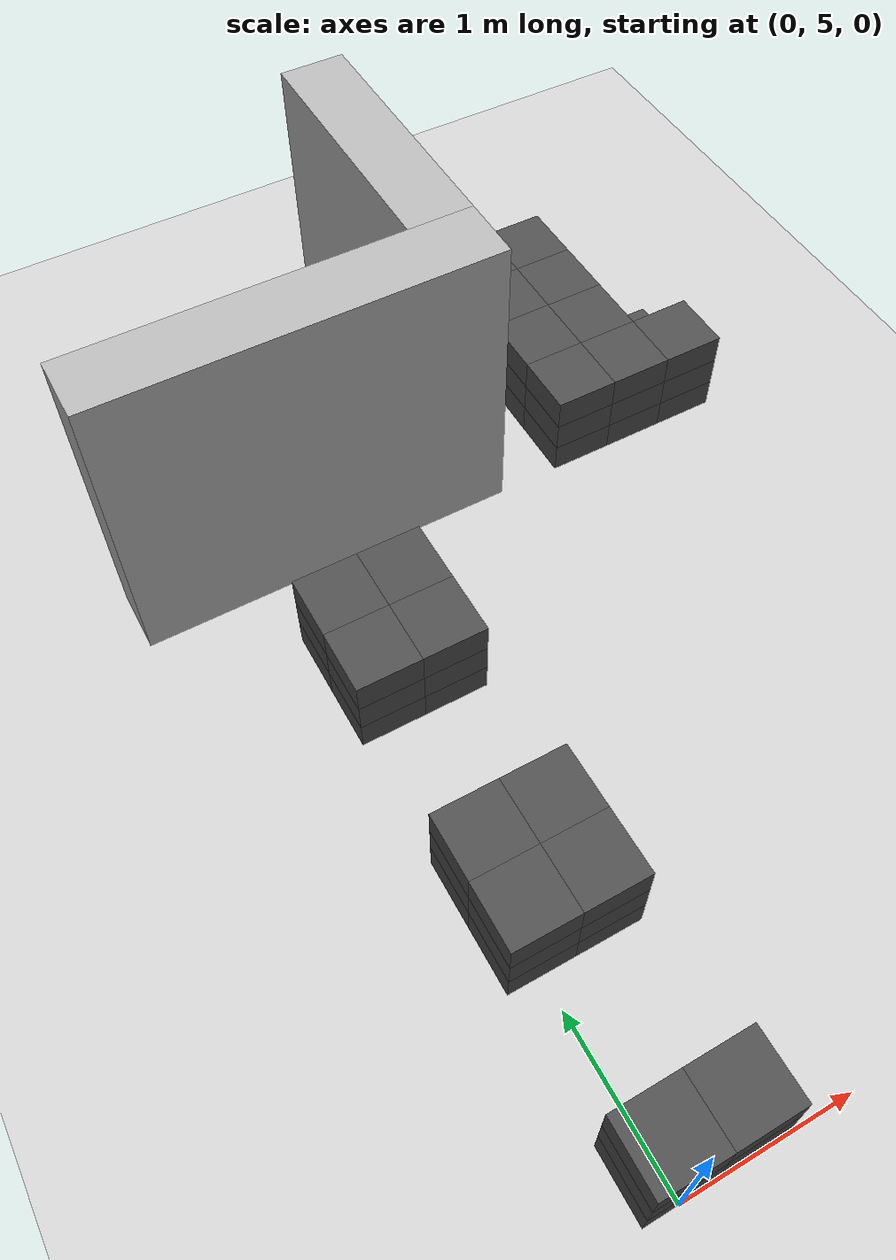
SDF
<sdf version="1.6">
 <world name="default">
  <include><uri>model://ground_plane</uri></include>
  <model name="wall_2">
   <pose frame="sim_world">1.2 10.2 1.0 0 0 0</pose>
   <static>True</static>
   <link name="wall_2_link">
    <inertial>
     <mass>100</mass>
     <inertia>
      <ixx>0.166667</ixx>
      <ixy>0</ixy>
      <ixz>0</ixz>
      <iyy>0.166667</iyy>
      <iyz>0</iyz>
      <izz>0.166667</izz>
     </inertia>
    </inertial>
    <collision name="wall_2_collision">
     <geometry><box><size>0.4 1.6 2.0</size></box></geometry>
     <max_contacts>100</max_contacts>
    </collision>
    <visual name="wall_2_visual">
     <geometry><box><size>0.4 1.6 2.0</size></box></geometry>
     <material><ambient>0.7 0.7 0.7 1</ambient><diffuse>0.7 0.7 0.7 1</diffuse></material>
    </visual>
   </link>
  </model>
  <model name="wall_23">
   <pose frame="sim_world">0.2 9.2 1.0 0 0 0</pose>
   <static>True</static>
   <link name="wall_23_link">
    <inertial>
     <mass>100</mass>
     <inertia>
      <ixx>0.166667</ixx>
      <ixy>0</ixy>
      <ixz>0</ixz>
      <iyy>0.166667</iyy>
      <iyz>0</iyz>
      <izz>0.166667</izz>
     </inertia>
    </inertial>
    <collision name="wall_23_collision">
     <geometry><box><size>2.4000000000000004 0.4 2.0</size></box></geometry>
     <max_contacts>100</max_contacts>
    </collision>
    <visual name="wall_23_visual">
     <geometry><box><size>2.4000000000000004 0.4 2.0</size></box></geometry>
     <material><ambient>0.7 0.7 0.7 1</ambient><diffuse>0.7 0.7 0.7 1</diffuse></material>
    </visual>
   </link>
  </model>
  <model name="box_24">
   <pose frame="sim_world">0.0 5.2 0.1 0 -0 0</pose>
   <static>True</static>
   <link name="box_24_link">
    <inertial>
     <mass>100</mass>
     <inertia>
      <ixx>0.166667</ixx>
      <ixy>0</ixy>
      <ixz>0</ixz>
      <iyy>0.166667</iyy>
      <iyz>0</iyz>
      <izz>0.166667</izz>
     </inertia>
    </inertial>
    <collision name="box_24_collision">
     <geometry><box><size>0.4 0.4 0.2</size></box></geometry>
     <max_contacts>100</max_contacts>
    </collision>
    <visual name="box_24_visual">
     <geometry><box><size>0.4 0.4 0.2</size></box></geometry>
     <material><ambient>0.3 0.3 0.3 1</ambient><diffuse>0.3 0.3 0.3 1</diffuse></material>
    </visual>
   </link>
  </model>
  <model name="box_25">
   <pose frame="sim_world">0.0 5.2 0.3 0 -0 0</pose>
   <static>True</static>
   <link name="box_25_link">
    <inertial>
     <mass>100</mass>
     <inertia>
      <ixx>0.166667</ixx>
      <ixy>0</ixy>
      <ixz>0</ixz>
      <iyy>0.166667</iyy>
      <iyz>0</iyz>
      <izz>0.166667</izz>
     </inertia>
    </inertial>
    <collision name="box_25_collision">
     <geometry><box><size>0.4 0.4 0.2</size></box></geometry>
     <max_contacts>100</max_contacts>
    </collision>
    <visual name="box_25_visual">
     <geometry><box><size>0.4 0.4 0.2</size></box></geometry>
     <material><ambient>0.3 0.3 0.3 1</ambient><diffuse>0.3 0.3 0.3 1</diffuse></material>
    </visual>
   </link>
  </model>
  <model name="box_26">
   <pose frame="sim_world">0.0 5.2 0.5 0 -0 0</pose>
   <static>True</static>
   <link name="box_26_link">
    <inertial>
     <mass>100</mass>
     <inertia>
      <ixx>0.166667</ixx>
      <ixy>0</ixy>
      <ixz>0</ixz>
      <iyy>0.166667</iyy>
      <iyz>0</iyz>
      <izz>0.166667</izz>
     </inertia>
    </inertial>
    <collision name="box_26_collision">
     <geometry><box><size>0.4 0.4 0.2</size></box></geometry>
     <max_contacts>100</max_contacts>
    </collision>
    <visual name="box_26_visual">
     <geometry><box><size>0.4 0.4 0.2</size></box></geometry>
     <material><ambient>0.3 0.3 0.3 1</ambient><diffuse>0.3 0.3 0.3 1</diffuse></material>
    </visual>
   </link>
  </model>
  <model name="box_27">
   <pose frame="sim_world">0.0 6.4 0.1 0 -0 0</pose>
   <static>True</static>
   <link name="box_27_link">
    <inertial>
     <mass>100</mass>
     <inertia>
      <ixx>0.166667</ixx>
      <ixy>0</ixy>
      <ixz>0</ixz>
      <iyy>0.166667</iyy>
      <iyz>0</iyz>
      <izz>0.166667</izz>
     </inertia>
    </inertial>
    <collision name="box_27_collision">
     <geometry><box><size>0.4 0.4 0.2</size></box></geometry>
     <max_contacts>100</max_contacts>
    </collision>
    <visual name="box_27_visual">
     <geometry><box><size>0.4 0.4 0.2</size></box></geometry>
     <material><ambient>0.3 0.3 0.3 1</ambient><diffuse>0.3 0.3 0.3 1</diffuse></material>
    </visual>
   </link>
  </model>
  <model name="box_28">
   <pose frame="sim_world">0.0 6.4 0.3 0 -0 0</pose>
   <static>True</static>
   <link name="box_28_link">
    <inertial>
     <mass>100</mass>
     <inertia>
      <ixx>0.166667</ixx>
      <ixy>0</ixy>
      <ixz>0</ixz>
      <iyy>0.166667</iyy>
      <iyz>0</iyz>
      <izz>0.166667</izz>
     </inertia>
    </inertial>
    <collision name="box_28_collision">
     <geometry><box><size>0.4 0.4 0.2</size></box></geometry>
     <max_contacts>100</max_contacts>
    </collision>
    <visual name="box_28_visual">
     <geometry><box><size>0.4 0.4 0.2</size></box></geometry>
     <material><ambient>0.3 0.3 0.3 1</ambient><diffuse>0.3 0.3 0.3 1</diffuse></material>
    </visual>
   </link>
  </model>
  <model name="box_29">
   <pose frame="sim_world">0.0 6.4 0.5 0 -0 0</pose>
   <static>True</static>
   <link name="box_29_link">
    <inertial>
     <mass>100</mass>
     <inertia>
      <ixx>0.166667</ixx>
      <ixy>0</ixy>
      <ixz>0</ixz>
      <iyy>0.166667</iyy>
      <iyz>0</iyz>
      <izz>0.166667</izz>
     </inertia>
    </inertial>
    <collision name="box_29_collision">
     <geometry><box><size>0.4 0.4 0.2</size></box></geometry>
     <max_contacts>100</max_contacts>
    </collision>
    <visual name="box_29_visual">
     <geometry><box><size>0.4 0.4 0.2</size></box></geometry>
     <material><ambient>0.3 0.3 0.3 1</ambient><diffuse>0.3 0.3 0.3 1</diffuse></material>
    </visual>
   </link>
  </model>
  <model name="box_30">
   <pose frame="sim_world">0.0 6.8 0.1 0 -0 0</pose>
   <static>True</static>
   <link name="box_30_link">
    <inertial>
     <mass>100</mass>
     <inertia>
      <ixx>0.166667</ixx>
      <ixy>0</ixy>
      <ixz>0</ixz>
      <iyy>0.166667</iyy>
      <iyz>0</iyz>
      <izz>0.166667</izz>
     </inertia>
    </inertial>
    <collision name="box_30_collision">
     <geometry><box><size>0.4 0.4 0.2</size></box></geometry>
     <max_contacts>100</max_contacts>
    </collision>
    <visual name="box_30_visual">
     <geometry><box><size>0.4 0.4 0.2</size></box></geometry>
     <material><ambient>0.3 0.3 0.3 1</ambient><diffuse>0.3 0.3 0.3 1</diffuse></material>
    </visual>
   </link>
  </model>
  <model name="box_31">
   <pose frame="sim_world">0.0 6.8 0.3 0 -0 0</pose>
   <static>True</static>
   <link name="box_31_link">
    <inertial>
     <mass>100</mass>
     <inertia>
      <ixx>0.166667</ixx>
      <ixy>0</ixy>
      <ixz>0</ixz>
      <iyy>0.166667</iyy>
      <iyz>0</iyz>
      <izz>0.166667</izz>
     </inertia>
    </inertial>
    <collision name="box_31_collision">
     <geometry><box><size>0.4 0.4 0.2</size></box></geometry>
     <max_contacts>100</max_contacts>
    </collision>
    <visual name="box_31_visual">
     <geometry><box><size>0.4 0.4 0.2</size></box></geometry>
     <material><ambient>0.3 0.3 0.3 1</ambient><diffuse>0.3 0.3 0.3 1</diffuse></material>
    </visual>
   </link>
  </model>
  <model name="box_32">
   <pose frame="sim_world">0.0 6.8 0.5 0 -0 0</pose>
   <static>True</static>
   <link name="box_32_link">
    <inertial>
     <mass>100</mass>
     <inertia>
      <ixx>0.166667</ixx>
      <ixy>0</ixy>
      <ixz>0</ixz>
      <iyy>0.166667</iyy>
      <iyz>0</iyz>
      <izz>0.166667</izz>
     </inertia>
    </inertial>
    <collision name="box_32_collision">
     <geometry><box><size>0.4 0.4 0.2</size></box></geometry>
     <max_contacts>100</max_contacts>
    </collision>
    <visual name="box_32_visual">
     <geometry><box><size>0.4 0.4 0.2</size></box></geometry>
     <material><ambient>0.3 0.3 0.3 1</ambient><diffuse>0.3 0.3 0.3 1</diffuse></material>
    </visual>
   </link>
  </model>
  <model name="box_33">
   <pose frame="sim_world">0.0 8.0 0.1 0 -0 0</pose>
   <static>True</static>
   <link name="box_33_link">
    <inertial>
     <mass>100</mass>
     <inertia>
      <ixx>0.166667</ixx>
      <ixy>0</ixy>
      <ixz>0</ixz>
      <iyy>0.166667</iyy>
      <iyz>0</iyz>
      <izz>0.166667</izz>
     </inertia>
    </inertial>
    <collision name="box_33_collision">
     <geometry><box><size>0.4 0.4 0.2</size></box></geometry>
     <max_contacts>100</max_contacts>
    </collision>
    <visual name="box_33_visual">
     <geometry><box><size>0.4 0.4 0.2</size></box></geometry>
     <material><ambient>0.3 0.3 0.3 1</ambient><diffuse>0.3 0.3 0.3 1</diffuse></material>
    </visual>
   </link>
  </model>
  <model name="box_34">
   <pose frame="sim_world">0.0 8.0 0.3 0 -0 0</pose>
   <static>True</static>
   <link name="box_34_link">
    <inertial>
     <mass>100</mass>
     <inertia>
      <ixx>0.166667</ixx>
      <ixy>0</ixy>
      <ixz>0</ixz>
      <iyy>0.166667</iyy>
      <iyz>0</iyz>
      <izz>0.166667</izz>
     </inertia>
    </inertial>
    <collision name="box_34_collision">
     <geometry><box><size>0.4 0.4 0.2</size></box></geometry>
     <max_contacts>100</max_contacts>
    </collision>
    <visual name="box_34_visual">
     <geometry><box><size>0.4 0.4 0.2</size></box></geometry>
     <material><ambient>0.3 0.3 0.3 1</ambient><diffuse>0.3 0.3 0.3 1</diffuse></material>
    </visual>
   </link>
  </model>
  <model name="box_35">
   <pose frame="sim_world">0.0 8.0 0.5 0 -0 0</pose>
   <static>True</static>
   <link name="box_35_link">
    <inertial>
     <mass>100</mass>
     <inertia>
      <ixx>0.166667</ixx>
      <ixy>0</ixy>
      <ixz>0</ixz>
      <iyy>0.166667</iyy>
      <iyz>0</iyz>
      <izz>0.166667</izz>
     </inertia>
    </inertial>
    <collision name="box_35_collision">
     <geometry><box><size>0.4 0.4 0.2</size></box></geometry>
     <max_contacts>100</max_contacts>
    </collision>
    <visual name="box_35_visual">
     <geometry><box><size>0.4 0.4 0.2</size></box></geometry>
     <material><ambient>0.3 0.3 0.3 1</ambient><diffuse>0.3 0.3 0.3 1</diffuse></material>
    </visual>
   </link>
  </model>
  <model name="box_36">
   <pose frame="sim_world">0.0 8.4 0.1 0 -0 0</pose>
   <static>True</static>
   <link name="box_36_link">
    <inertial>
     <mass>100</mass>
     <inertia>
      <ixx>0.166667</ixx>
      <ixy>0</ixy>
      <ixz>0</ixz>
      <iyy>0.166667</iyy>
      <iyz>0</iyz>
      <izz>0.166667</izz>
     </inertia>
    </inertial>
    <collision name="box_36_collision">
     <geometry><box><size>0.4 0.4 0.2</size></box></geometry>
     <max_contacts>100</max_contacts>
    </collision>
    <visual name="box_36_visual">
     <geometry><box><size>0.4 0.4 0.2</size></box></geometry>
     <material><ambient>0.3 0.3 0.3 1</ambient><diffuse>0.3 0.3 0.3 1</diffuse></material>
    </visual>
   </link>
  </model>
  <model name="box_37">
   <pose frame="sim_world">0.0 8.4 0.3 0 -0 0</pose>
   <static>True</static>
   <link name="box_37_link">
    <inertial>
     <mass>100</mass>
     <inertia>
      <ixx>0.166667</ixx>
      <ixy>0</ixy>
      <ixz>0</ixz>
      <iyy>0.166667</iyy>
      <iyz>0</iyz>
      <izz>0.166667</izz>
     </inertia>
    </inertial>
    <collision name="box_37_collision">
     <geometry><box><size>0.4 0.4 0.2</size></box></geometry>
     <max_contacts>100</max_contacts>
    </collision>
    <visual name="box_37_visual">
     <geometry><box><size>0.4 0.4 0.2</size></box></geometry>
     <material><ambient>0.3 0.3 0.3 1</ambient><diffuse>0.3 0.3 0.3 1</diffuse></material>
    </visual>
   </link>
  </model>
  <model name="box_38">
   <pose frame="sim_world">0.0 8.4 0.5 0 -0 0</pose>
   <static>True</static>
   <link name="box_38_link">
    <inertial>
     <mass>100</mass>
     <inertia>
      <ixx>0.166667</ixx>
      <ixy>0</ixy>
      <ixz>0</ixz>
      <iyy>0.166667</iyy>
      <iyz>0</iyz>
      <izz>0.166667</izz>
     </inertia>
    </inertial>
    <collision name="box_38_collision">
     <geometry><box><size>0.4 0.4 0.2</size></box></geometry>
     <max_contacts>100</max_contacts>
    </collision>
    <visual name="box_38_visual">
     <geometry><box><size>0.4 0.4 0.2</size></box></geometry>
     <material><ambient>0.3 0.3 0.3 1</ambient><diffuse>0.3 0.3 0.3 1</diffuse></material>
    </visual>
   </link>
  </model>
  <model name="box_57">
   <pose frame="sim_world">0.4 5.2 0.1 0 -0 0</pose>
   <static>True</static>
   <link name="box_57_link">
    <inertial>
     <mass>100</mass>
     <inertia>
      <ixx>0.166667</ixx>
      <ixy>0</ixy>
      <ixz>0</ixz>
      <iyy>0.166667</iyy>
      <iyz>0</iyz>
      <izz>0.166667</izz>
     </inertia>
    </inertial>
    <collision name="box_57_collision">
     <geometry><box><size>0.4 0.4 0.2</size></box></geometry>
     <max_contacts>100</max_contacts>
    </collision>
    <visual name="box_57_visual">
     <geometry><box><size>0.4 0.4 0.2</size></box></geometry>
     <material><ambient>0.3 0.3 0.3 1</ambient><diffuse>0.3 0.3 0.3 1</diffuse></material>
    </visual>
   </link>
  </model>
  <model name="box_58">
   <pose frame="sim_world">0.4 5.2 0.3 0 -0 0</pose>
   <static>True</static>
   <link name="box_58_link">
    <inertial>
     <mass>100</mass>
     <inertia>
      <ixx>0.166667</ixx>
      <ixy>0</ixy>
      <ixz>0</ixz>
      <iyy>0.166667</iyy>
      <iyz>0</iyz>
      <izz>0.166667</izz>
     </inertia>
    </inertial>
    <collision name="box_58_collision">
     <geometry><box><size>0.4 0.4 0.2</size></box></geometry>
     <max_contacts>100</max_contacts>
    </collision>
    <visual name="box_58_visual">
     <geometry><box><size>0.4 0.4 0.2</size></box></geometry>
     <material><ambient>0.3 0.3 0.3 1</ambient><diffuse>0.3 0.3 0.3 1</diffuse></material>
    </visual>
   </link>
  </model>
  <model name="box_59">
   <pose frame="sim_world">0.4 5.2 0.5 0 -0 0</pose>
   <static>True</static>
   <link name="box_59_link">
    <inertial>
     <mass>100</mass>
     <inertia>
      <ixx>0.166667</ixx>
      <ixy>0</ixy>
      <ixz>0</ixz>
      <iyy>0.166667</iyy>
      <iyz>0</iyz>
      <izz>0.166667</izz>
     </inertia>
    </inertial>
    <collision name="box_59_collision">
     <geometry><box><size>0.4 0.4 0.2</size></box></geometry>
     <max_contacts>100</max_contacts>
    </collision>
    <visual name="box_59_visual">
     <geometry><box><size>0.4 0.4 0.2</size></box></geometry>
     <material><ambient>0.3 0.3 0.3 1</ambient><diffuse>0.3 0.3 0.3 1</diffuse></material>
    </visual>
   </link>
  </model>
  <model name="box_60">
   <pose frame="sim_world">0.4 6.4 0.1 0 -0 0</pose>
   <static>True</static>
   <link name="box_60_link">
    <inertial>
     <mass>100</mass>
     <inertia>
      <ixx>0.166667</ixx>
      <ixy>0</ixy>
      <ixz>0</ixz>
      <iyy>0.166667</iyy>
      <iyz>0</iyz>
      <izz>0.166667</izz>
     </inertia>
    </inertial>
    <collision name="box_60_collision">
     <geometry><box><size>0.4 0.4 0.2</size></box></geometry>
     <max_contacts>100</max_contacts>
    </collision>
    <visual name="box_60_visual">
     <geometry><box><size>0.4 0.4 0.2</size></box></geometry>
     <material><ambient>0.3 0.3 0.3 1</ambient><diffuse>0.3 0.3 0.3 1</diffuse></material>
    </visual>
   </link>
  </model>
  <model name="box_61">
   <pose frame="sim_world">0.4 6.4 0.3 0 -0 0</pose>
   <static>True</static>
   <link name="box_61_link">
    <inertial>
     <mass>100</mass>
     <inertia>
      <ixx>0.166667</ixx>
      <ixy>0</ixy>
      <ixz>0</ixz>
      <iyy>0.166667</iyy>
      <iyz>0</iyz>
      <izz>0.166667</izz>
     </inertia>
    </inertial>
    <collision name="box_61_collision">
     <geometry><box><size>0.4 0.4 0.2</size></box></geometry>
     <max_contacts>100</max_contacts>
    </collision>
    <visual name="box_61_visual">
     <geometry><box><size>0.4 0.4 0.2</size></box></geometry>
     <material><ambient>0.3 0.3 0.3 1</ambient><diffuse>0.3 0.3 0.3 1</diffuse></material>
    </visual>
   </link>
  </model>
  <model name="box_62">
   <pose frame="sim_world">0.4 6.4 0.5 0 -0 0</pose>
   <static>True</static>
   <link name="box_62_link">
    <inertial>
     <mass>100</mass>
     <inertia>
      <ixx>0.166667</ixx>
      <ixy>0</ixy>
      <ixz>0</ixz>
      <iyy>0.166667</iyy>
      <iyz>0</iyz>
      <izz>0.166667</izz>
     </inertia>
    </inertial>
    <collision name="box_62_collision">
     <geometry><box><size>0.4 0.4 0.2</size></box></geometry>
     <max_contacts>100</max_contacts>
    </collision>
    <visual name="box_62_visual">
     <geometry><box><size>0.4 0.4 0.2</size></box></geometry>
     <material><ambient>0.3 0.3 0.3 1</ambient><diffuse>0.3 0.3 0.3 1</diffuse></material>
    </visual>
   </link>
  </model>
  <model name="box_63">
   <pose frame="sim_world">0.4 6.8 0.1 0 -0 0</pose>
   <static>True</static>
   <link name="box_63_link">
    <inertial>
     <mass>100</mass>
     <inertia>
      <ixx>0.166667</ixx>
      <ixy>0</ixy>
      <ixz>0</ixz>
      <iyy>0.166667</iyy>
      <iyz>0</iyz>
      <izz>0.166667</izz>
     </inertia>
    </inertial>
    <collision name="box_63_collision">
     <geometry><box><size>0.4 0.4 0.2</size></box></geometry>
     <max_contacts>100</max_contacts>
    </collision>
    <visual name="box_63_visual">
     <geometry><box><size>0.4 0.4 0.2</size></box></geometry>
     <material><ambient>0.3 0.3 0.3 1</ambient><diffuse>0.3 0.3 0.3 1</diffuse></material>
    </visual>
   </link>
  </model>
  <model name="box_64">
   <pose frame="sim_world">0.4 6.8 0.3 0 -0 0</pose>
   <static>True</static>
   <link name="box_64_link">
    <inertial>
     <mass>100</mass>
     <inertia>
      <ixx>0.166667</ixx>
      <ixy>0</ixy>
      <ixz>0</ixz>
      <iyy>0.166667</iyy>
      <iyz>0</iyz>
      <izz>0.166667</izz>
     </inertia>
    </inertial>
    <collision name="box_64_collision">
     <geometry><box><size>0.4 0.4 0.2</size></box></geometry>
     <max_contacts>100</max_contacts>
    </collision>
    <visual name="box_64_visual">
     <geometry><box><size>0.4 0.4 0.2</size></box></geometry>
     <material><ambient>0.3 0.3 0.3 1</ambient><diffuse>0.3 0.3 0.3 1</diffuse></material>
    </visual>
   </link>
  </model>
  <model name="box_65">
   <pose frame="sim_world">0.4 6.8 0.5 0 -0 0</pose>
   <static>True</static>
   <link name="box_65_link">
    <inertial>
     <mass>100</mass>
     <inertia>
      <ixx>0.166667</ixx>
      <ixy>0</ixy>
      <ixz>0</ixz>
      <iyy>0.166667</iyy>
      <iyz>0</iyz>
      <izz>0.166667</izz>
     </inertia>
    </inertial>
    <collision name="box_65_collision">
     <geometry><box><size>0.4 0.4 0.2</size></box></geometry>
     <max_contacts>100</max_contacts>
    </collision>
    <visual name="box_65_visual">
     <geometry><box><size>0.4 0.4 0.2</size></box></geometry>
     <material><ambient>0.3 0.3 0.3 1</ambient><diffuse>0.3 0.3 0.3 1</diffuse></material>
    </visual>
   </link>
  </model>
  <model name="box_66">
   <pose frame="sim_world">0.4 8.0 0.1 0 -0 0</pose>
   <static>True</static>
   <link name="box_66_link">
    <inertial>
     <mass>100</mass>
     <inertia>
      <ixx>0.166667</ixx>
      <ixy>0</ixy>
      <ixz>0</ixz>
      <iyy>0.166667</iyy>
      <iyz>0</iyz>
      <izz>0.166667</izz>
     </inertia>
    </inertial>
    <collision name="box_66_collision">
     <geometry><box><size>0.4 0.4 0.2</size></box></geometry>
     <max_contacts>100</max_contacts>
    </collision>
    <visual name="box_66_visual">
     <geometry><box><size>0.4 0.4 0.2</size></box></geometry>
     <material><ambient>0.3 0.3 0.3 1</ambient><diffuse>0.3 0.3 0.3 1</diffuse></material>
    </visual>
   </link>
  </model>
  <model name="box_67">
   <pose frame="sim_world">0.4 8.0 0.3 0 -0 0</pose>
   <static>True</static>
   <link name="box_67_link">
    <inertial>
     <mass>100</mass>
     <inertia>
      <ixx>0.166667</ixx>
      <ixy>0</ixy>
      <ixz>0</ixz>
      <iyy>0.166667</iyy>
      <iyz>0</iyz>
      <izz>0.166667</izz>
     </inertia>
    </inertial>
    <collision name="box_67_collision">
     <geometry><box><size>0.4 0.4 0.2</size></box></geometry>
     <max_contacts>100</max_contacts>
    </collision>
    <visual name="box_67_visual">
     <geometry><box><size>0.4 0.4 0.2</size></box></geometry>
     <material><ambient>0.3 0.3 0.3 1</ambient><diffuse>0.3 0.3 0.3 1</diffuse></material>
    </visual>
   </link>
  </model>
  <model name="box_68">
   <pose frame="sim_world">0.4 8.0 0.5 0 -0 0</pose>
   <static>True</static>
   <link name="box_68_link">
    <inertial>
     <mass>100</mass>
     <inertia>
      <ixx>0.166667</ixx>
      <ixy>0</ixy>
      <ixz>0</ixz>
      <iyy>0.166667</iyy>
      <iyz>0</iyz>
      <izz>0.166667</izz>
     </inertia>
    </inertial>
    <collision name="box_68_collision">
     <geometry><box><size>0.4 0.4 0.2</size></box></geometry>
     <max_contacts>100</max_contacts>
    </collision>
    <visual name="box_68_visual">
     <geometry><box><size>0.4 0.4 0.2</size></box></geometry>
     <material><ambient>0.3 0.3 0.3 1</ambient><diffuse>0.3 0.3 0.3 1</diffuse></material>
    </visual>
   </link>
  </model>
  <model name="box_69">
   <pose frame="sim_world">0.4 8.4 0.1 0 -0 0</pose>
   <static>True</static>
   <link name="box_69_link">
    <inertial>
     <mass>100</mass>
     <inertia>
      <ixx>0.166667</ixx>
      <ixy>0</ixy>
      <ixz>0</ixz>
      <iyy>0.166667</iyy>
      <iyz>0</iyz>
      <izz>0.166667</izz>
     </inertia>
    </inertial>
    <collision name="box_69_collision">
     <geometry><box><size>0.4 0.4 0.2</size></box></geometry>
     <max_contacts>100</max_contacts>
    </collision>
    <visual name="box_69_visual">
     <geometry><box><size>0.4 0.4 0.2</size></box></geometry>
     <material><ambient>0.3 0.3 0.3 1</ambient><diffuse>0.3 0.3 0.3 1</diffuse></material>
    </visual>
   </link>
  </model>
  <model name="box_70">
   <pose frame="sim_world">0.4 8.4 0.3 0 -0 0</pose>
   <static>True</static>
   <link name="box_70_link">
    <inertial>
     <mass>100</mass>
     <inertia>
      <ixx>0.166667</ixx>
      <ixy>0</ixy>
      <ixz>0</ixz>
      <iyy>0.166667</iyy>
      <iyz>0</iyz>
      <izz>0.166667</izz>
     </inertia>
    </inertial>
    <collision name="box_70_collision">
     <geometry><box><size>0.4 0.4 0.2</size></box></geometry>
     <max_contacts>100</max_contacts>
    </collision>
    <visual name="box_70_visual">
     <geometry><box><size>0.4 0.4 0.2</size></box></geometry>
     <material><ambient>0.3 0.3 0.3 1</ambient><diffuse>0.3 0.3 0.3 1</diffuse></material>
    </visual>
   </link>
  </model>
  <model name="box_71">
   <pose frame="sim_world">0.4 8.4 0.5 0 -0 0</pose>
   <static>True</static>
   <link name="box_71_link">
    <inertial>
     <mass>100</mass>
     <inertia>
      <ixx>0.166667</ixx>
      <ixy>0</ixy>
      <ixz>0</ixz>
      <iyy>0.166667</iyy>
      <iyz>0</iyz>
      <izz>0.166667</izz>
     </inertia>
    </inertial>
    <collision name="box_71_collision">
     <geometry><box><size>0.4 0.4 0.2</size></box></geometry>
     <max_contacts>100</max_contacts>
    </collision>
    <visual name="box_71_visual">
     <geometry><box><size>0.4 0.4 0.2</size></box></geometry>
     <material><ambient>0.3 0.3 0.3 1</ambient><diffuse>0.3 0.3 0.3 1</diffuse></material>
    </visual>
   </link>
  </model>
  <model name="box_75">
   <pose frame="sim_world">2.0 9.2 0.1 0 -0 0</pose>
   <static>True</static>
   <link name="box_75_link">
    <inertial>
     <mass>100</mass>
     <inertia>
      <ixx>0.166667</ixx>
      <ixy>0</ixy>
      <ixz>0</ixz>
      <iyy>0.166667</iyy>
      <iyz>0</iyz>
      <izz>0.166667</izz>
     </inertia>
    </inertial>
    <collision name="box_75_collision">
     <geometry><box><size>0.4 0.4 0.2</size></box></geometry>
     <max_contacts>100</max_contacts>
    </collision>
    <visual name="box_75_visual">
     <geometry><box><size>0.4 0.4 0.2</size></box></geometry>
     <material><ambient>0.3 0.3 0.3 1</ambient><diffuse>0.3 0.3 0.3 1</diffuse></material>
    </visual>
   </link>
  </model>
  <model name="box_76">
   <pose frame="sim_world">2.0 9.2 0.3 0 -0 0</pose>
   <static>True</static>
   <link name="box_76_link">
    <inertial>
     <mass>100</mass>
     <inertia>
      <ixx>0.166667</ixx>
      <ixy>0</ixy>
      <ixz>0</ixz>
      <iyy>0.166667</iyy>
      <iyz>0</iyz>
      <izz>0.166667</izz>
     </inertia>
    </inertial>
    <collision name="box_76_collision">
     <geometry><box><size>0.4 0.4 0.2</size></box></geometry>
     <max_contacts>100</max_contacts>
    </collision>
    <visual name="box_76_visual">
     <geometry><box><size>0.4 0.4 0.2</size></box></geometry>
     <material><ambient>0.3 0.3 0.3 1</ambient><diffuse>0.3 0.3 0.3 1</diffuse></material>
    </visual>
   </link>
  </model>
  <model name="box_77">
   <pose frame="sim_world">2.0 9.2 0.5 0 -0 0</pose>
   <static>True</static>
   <link name="box_77_link">
    <inertial>
     <mass>100</mass>
     <inertia>
      <ixx>0.166667</ixx>
      <ixy>0</ixy>
      <ixz>0</ixz>
      <iyy>0.166667</iyy>
      <iyz>0</iyz>
      <izz>0.166667</izz>
     </inertia>
    </inertial>
    <collision name="box_77_collision">
     <geometry><box><size>0.4 0.4 0.2</size></box></geometry>
     <max_contacts>100</max_contacts>
    </collision>
    <visual name="box_77_visual">
     <geometry><box><size>0.4 0.4 0.2</size></box></geometry>
     <material><ambient>0.3 0.3 0.3 1</ambient><diffuse>0.3 0.3 0.3 1</diffuse></material>
    </visual>
   </link>
  </model>
  <model name="box_78">
   <pose frame="sim_world">2.0 9.6 0.1 0 -0 0</pose>
   <static>True</static>
   <link name="box_78_link">
    <inertial>
     <mass>100</mass>
     <inertia>
      <ixx>0.166667</ixx>
      <ixy>0</ixy>
      <ixz>0</ixz>
      <iyy>0.166667</iyy>
      <iyz>0</iyz>
      <izz>0.166667</izz>
     </inertia>
    </inertial>
    <collision name="box_78_collision">
     <geometry><box><size>0.4 0.4 0.2</size></box></geometry>
     <max_contacts>100</max_contacts>
    </collision>
    <visual name="box_78_visual">
     <geometry><box><size>0.4 0.4 0.2</size></box></geometry>
     <material><ambient>0.3 0.3 0.3 1</ambient><diffuse>0.3 0.3 0.3 1</diffuse></material>
    </visual>
   </link>
  </model>
  <model name="box_79">
   <pose frame="sim_world">2.0 9.6 0.3 0 -0 0</pose>
   <static>True</static>
   <link name="box_79_link">
    <inertial>
     <mass>100</mass>
     <inertia>
      <ixx>0.166667</ixx>
      <ixy>0</ixy>
      <ixz>0</ixz>
      <iyy>0.166667</iyy>
      <iyz>0</iyz>
      <izz>0.166667</izz>
     </inertia>
    </inertial>
    <collision name="box_79_collision">
     <geometry><box><size>0.4 0.4 0.2</size></box></geometry>
     <max_contacts>100</max_contacts>
    </collision>
    <visual name="box_79_visual">
     <geometry><box><size>0.4 0.4 0.2</size></box></geometry>
     <material><ambient>0.3 0.3 0.3 1</ambient><diffuse>0.3 0.3 0.3 1</diffuse></material>
    </visual>
   </link>
  </model>
  <model name="box_80">
   <pose frame="sim_world">2.0 9.6 0.5 0 -0 0</pose>
   <static>True</static>
   <link name="box_80_link">
    <inertial>
     <mass>100</mass>
     <inertia>
      <ixx>0.166667</ixx>
      <ixy>0</ixy>
      <ixz>0</ixz>
      <iyy>0.166667</iyy>
      <iyz>0</iyz>
      <izz>0.166667</izz>
     </inertia>
    </inertial>
    <collision name="box_80_collision">
     <geometry><box><size>0.4 0.4 0.2</size></box></geometry>
     <max_contacts>100</max_contacts>
    </collision>
    <visual name="box_80_visual">
     <geometry><box><size>0.4 0.4 0.2</size></box></geometry>
     <material><ambient>0.3 0.3 0.3 1</ambient><diffuse>0.3 0.3 0.3 1</diffuse></material>
    </visual>
   </link>
  </model>
  <model name="box_81">
   <pose frame="sim_world">2.0 10.0 0.1 0 -0 0</pose>
   <static>True</static>
   <link name="box_81_link">
    <inertial>
     <mass>100</mass>
     <inertia>
      <ixx>0.166667</ixx>
      <ixy>0</ixy>
      <ixz>0</ixz>
      <iyy>0.166667</iyy>
      <iyz>0</iyz>
      <izz>0.166667</izz>
     </inertia>
    </inertial>
    <collision name="box_81_collision">
     <geometry><box><size>0.4 0.4 0.2</size></box></geometry>
     <max_contacts>100</max_contacts>
    </collision>
    <visual name="box_81_visual">
     <geometry><box><size>0.4 0.4 0.2</size></box></geometry>
     <material><ambient>0.3 0.3 0.3 1</ambient><diffuse>0.3 0.3 0.3 1</diffuse></material>
    </visual>
   </link>
  </model>
  <model name="box_82">
   <pose frame="sim_world">2.0 10.0 0.3 0 -0 0</pose>
   <static>True</static>
   <link name="box_82_link">
    <inertial>
     <mass>100</mass>
     <inertia>
      <ixx>0.166667</ixx>
      <ixy>0</ixy>
      <ixz>0</ixz>
      <iyy>0.166667</iyy>
      <iyz>0</iyz>
      <izz>0.166667</izz>
     </inertia>
    </inertial>
    <collision name="box_82_collision">
     <geometry><box><size>0.4 0.4 0.2</size></box></geometry>
     <max_contacts>100</max_contacts>
    </collision>
    <visual name="box_82_visual">
     <geometry><box><size>0.4 0.4 0.2</size></box></geometry>
     <material><ambient>0.3 0.3 0.3 1</ambient><diffuse>0.3 0.3 0.3 1</diffuse></material>
    </visual>
   </link>
  </model>
  <model name="box_83">
   <pose frame="sim_world">2.0 10.0 0.5 0 -0 0</pose>
   <static>True</static>
   <link name="box_83_link">
    <inertial>
     <mass>100</mass>
     <inertia>
      <ixx>0.166667</ixx>
      <ixy>0</ixy>
      <ixz>0</ixz>
      <iyy>0.166667</iyy>
      <iyz>0</iyz>
      <izz>0.166667</izz>
     </inertia>
    </inertial>
    <collision name="box_83_collision">
     <geometry><box><size>0.4 0.4 0.2</size></box></geometry>
     <max_contacts>100</max_contacts>
    </collision>
    <visual name="box_83_visual">
     <geometry><box><size>0.4 0.4 0.2</size></box></geometry>
     <material><ambient>0.3 0.3 0.3 1</ambient><diffuse>0.3 0.3 0.3 1</diffuse></material>
    </visual>
   </link>
  </model>
  <model name="box_84">
   <pose frame="sim_world">2.0 10.4 0.1 0 -0 0</pose>
   <static>True</static>
   <link name="box_84_link">
    <inertial>
     <mass>100</mass>
     <inertia>
      <ixx>0.166667</ixx>
      <ixy>0</ixy>
      <ixz>0</ixz>
      <iyy>0.166667</iyy>
      <iyz>0</iyz>
      <izz>0.166667</izz>
     </inertia>
    </inertial>
    <collision name="box_84_collision">
     <geometry><box><size>0.4 0.4 0.2</size></box></geometry>
     <max_contacts>100</max_contacts>
    </collision>
    <visual name="box_84_visual">
     <geometry><box><size>0.4 0.4 0.2</size></box></geometry>
     <material><ambient>0.3 0.3 0.3 1</ambient><diffuse>0.3 0.3 0.3 1</diffuse></material>
    </visual>
   </link>
  </model>
  <model name="box_85">
   <pose frame="sim_world">2.0 10.4 0.3 0 -0 0</pose>
   <static>True</static>
   <link name="box_85_link">
    <inertial>
     <mass>100</mass>
     <inertia>
      <ixx>0.166667</ixx>
      <ixy>0</ixy>
      <ixz>0</ixz>
      <iyy>0.166667</iyy>
      <iyz>0</iyz>
      <izz>0.166667</izz>
     </inertia>
    </inertial>
    <collision name="box_85_collision">
     <geometry><box><size>0.4 0.4 0.2</size></box></geometry>
     <max_contacts>100</max_contacts>
    </collision>
    <visual name="box_85_visual">
     <geometry><box><size>0.4 0.4 0.2</size></box></geometry>
     <material><ambient>0.3 0.3 0.3 1</ambient><diffuse>0.3 0.3 0.3 1</diffuse></material>
    </visual>
   </link>
  </model>
  <model name="box_86">
   <pose frame="sim_world">2.0 10.4 0.5 0 -0 0</pose>
   <static>True</static>
   <link name="box_86_link">
    <inertial>
     <mass>100</mass>
     <inertia>
      <ixx>0.166667</ixx>
      <ixy>0</ixy>
      <ixz>0</ixz>
      <iyy>0.166667</iyy>
      <iyz>0</iyz>
      <izz>0.166667</izz>
     </inertia>
    </inertial>
    <collision name="box_86_collision">
     <geometry><box><size>0.4 0.4 0.2</size></box></geometry>
     <max_contacts>100</max_contacts>
    </collision>
    <visual name="box_86_visual">
     <geometry><box><size>0.4 0.4 0.2</size></box></geometry>
     <material><ambient>0.3 0.3 0.3 1</ambient><diffuse>0.3 0.3 0.3 1</diffuse></material>
    </visual>
   </link>
  </model>
  <model name="box_93">
   <pose frame="sim_world">2.4 9.2 0.1 0 -0 0</pose>
   <static>True</static>
   <link name="box_93_link">
    <inertial>
     <mass>100</mass>
     <inertia>
      <ixx>0.166667</ixx>
      <ixy>0</ixy>
      <ixz>0</ixz>
      <iyy>0.166667</iyy>
      <iyz>0</iyz>
      <izz>0.166667</izz>
     </inertia>
    </inertial>
    <collision name="box_93_collision">
     <geometry><box><size>0.4 0.4 0.2</size></box></geometry>
     <max_contacts>100</max_contacts>
    </collision>
    <visual name="box_93_visual">
     <geometry><box><size>0.4 0.4 0.2</size></box></geometry>
     <material><ambient>0.3 0.3 0.3 1</ambient><diffuse>0.3 0.3 0.3 1</diffuse></material>
    </visual>
   </link>
  </model>
  <model name="box_94">
   <pose frame="sim_world">2.4 9.2 0.3 0 -0 0</pose>
   <static>True</static>
   <link name="box_94_link">
    <inertial>
     <mass>100</mass>
     <inertia>
      <ixx>0.166667</ixx>
      <ixy>0</ixy>
      <ixz>0</ixz>
      <iyy>0.166667</iyy>
      <iyz>0</iyz>
      <izz>0.166667</izz>
     </inertia>
    </inertial>
    <collision name="box_94_collision">
     <geometry><box><size>0.4 0.4 0.2</size></box></geometry>
     <max_contacts>100</max_contacts>
    </collision>
    <visual name="box_94_visual">
     <geometry><box><size>0.4 0.4 0.2</size></box></geometry>
     <material><ambient>0.3 0.3 0.3 1</ambient><diffuse>0.3 0.3 0.3 1</diffuse></material>
    </visual>
   </link>
  </model>
  <model name="box_95">
   <pose frame="sim_world">2.4 9.2 0.5 0 -0 0</pose>
   <static>True</static>
   <link name="box_95_link">
    <inertial>
     <mass>100</mass>
     <inertia>
      <ixx>0.166667</ixx>
      <ixy>0</ixy>
      <ixz>0</ixz>
      <iyy>0.166667</iyy>
      <iyz>0</iyz>
      <izz>0.166667</izz>
     </inertia>
    </inertial>
    <collision name="box_95_collision">
     <geometry><box><size>0.4 0.4 0.2</size></box></geometry>
     <max_contacts>100</max_contacts>
    </collision>
    <visual name="box_95_visual">
     <geometry><box><size>0.4 0.4 0.2</size></box></geometry>
     <material><ambient>0.3 0.3 0.3 1</ambient><diffuse>0.3 0.3 0.3 1</diffuse></material>
    </visual>
   </link>
  </model>
  <model name="box_96">
   <pose frame="sim_world">2.4 9.6 0.1 0 -0 0</pose>
   <static>True</static>
   <link name="box_96_link">
    <inertial>
     <mass>100</mass>
     <inertia>
      <ixx>0.166667</ixx>
      <ixy>0</ixy>
      <ixz>0</ixz>
      <iyy>0.166667</iyy>
      <iyz>0</iyz>
      <izz>0.166667</izz>
     </inertia>
    </inertial>
    <collision name="box_96_collision">
     <geometry><box><size>0.4 0.4 0.2</size></box></geometry>
     <max_contacts>100</max_contacts>
    </collision>
    <visual name="box_96_visual">
     <geometry><box><size>0.4 0.4 0.2</size></box></geometry>
     <material><ambient>0.3 0.3 0.3 1</ambient><diffuse>0.3 0.3 0.3 1</diffuse></material>
    </visual>
   </link>
  </model>
  <model name="box_97">
   <pose frame="sim_world">2.4 9.6 0.3 0 -0 0</pose>
   <static>True</static>
   <link name="box_97_link">
    <inertial>
     <mass>100</mass>
     <inertia>
      <ixx>0.166667</ixx>
      <ixy>0</ixy>
      <ixz>0</ixz>
      <iyy>0.166667</iyy>
      <iyz>0</iyz>
      <izz>0.166667</izz>
     </inertia>
    </inertial>
    <collision name="box_97_collision">
     <geometry><box><size>0.4 0.4 0.2</size></box></geometry>
     <max_contacts>100</max_contacts>
    </collision>
    <visual name="box_97_visual">
     <geometry><box><size>0.4 0.4 0.2</size></box></geometry>
     <material><ambient>0.3 0.3 0.3 1</ambient><diffuse>0.3 0.3 0.3 1</diffuse></material>
    </visual>
   </link>
  </model>
  <model name="box_98">
   <pose frame="sim_world">2.4 9.6 0.5 0 -0 0</pose>
   <static>True</static>
   <link name="box_98_link">
    <inertial>
     <mass>100</mass>
     <inertia>
      <ixx>0.166667</ixx>
      <ixy>0</ixy>
      <ixz>0</ixz>
      <iyy>0.166667</iyy>
      <iyz>0</iyz>
      <izz>0.166667</izz>
     </inertia>
    </inertial>
    <collision name="box_98_collision">
     <geometry><box><size>0.4 0.4 0.2</size></box></geometry>
     <max_contacts>100</max_contacts>
    </collision>
    <visual name="box_98_visual">
     <geometry><box><size>0.4 0.4 0.2</size></box></geometry>
     <material><ambient>0.3 0.3 0.3 1</ambient><diffuse>0.3 0.3 0.3 1</diffuse></material>
    </visual>
   </link>
  </model>
  <model name="box_99">
   <pose frame="sim_world">2.4 10.0 0.1 0 -0 0</pose>
   <static>True</static>
   <link name="box_99_link">
    <inertial>
     <mass>100</mass>
     <inertia>
      <ixx>0.166667</ixx>
      <ixy>0</ixy>
      <ixz>0</ixz>
      <iyy>0.166667</iyy>
      <iyz>0</iyz>
      <izz>0.166667</izz>
     </inertia>
    </inertial>
    <collision name="box_99_collision">
     <geometry><box><size>0.4 0.4 0.2</size></box></geometry>
     <max_contacts>100</max_contacts>
    </collision>
    <visual name="box_99_visual">
     <geometry><box><size>0.4 0.4 0.2</size></box></geometry>
     <material><ambient>0.3 0.3 0.3 1</ambient><diffuse>0.3 0.3 0.3 1</diffuse></material>
    </visual>
   </link>
  </model>
  <model name="box_100">
   <pose frame="sim_world">2.4 10.0 0.3 0 -0 0</pose>
   <static>True</static>
   <link name="box_100_link">
    <inertial>
     <mass>100</mass>
     <inertia>
      <ixx>0.166667</ixx>
      <ixy>0</ixy>
      <ixz>0</ixz>
      <iyy>0.166667</iyy>
      <iyz>0</iyz>
      <izz>0.166667</izz>
     </inertia>
    </inertial>
    <collision name="box_100_collision">
     <geometry><box><size>0.4 0.4 0.2</size></box></geometry>
     <max_contacts>100</max_contacts>
    </collision>
    <visual name="box_100_visual">
     <geometry><box><size>0.4 0.4 0.2</size></box></geometry>
     <material><ambient>0.3 0.3 0.3 1</ambient><diffuse>0.3 0.3 0.3 1</diffuse></material>
    </visual>
   </link>
  </model>
  <model name="box_101">
   <pose frame="sim_world">2.4 10.0 0.5 0 -0 0</pose>
   <static>True</static>
   <link name="box_101_link">
    <inertial>
     <mass>100</mass>
     <inertia>
      <ixx>0.166667</ixx>
      <ixy>0</ixy>
      <ixz>0</ixz>
      <iyy>0.166667</iyy>
      <iyz>0</iyz>
      <izz>0.166667</izz>
     </inertia>
    </inertial>
    <collision name="box_101_collision">
     <geometry><box><size>0.4 0.4 0.2</size></box></geometry>
     <max_contacts>100</max_contacts>
    </collision>
    <visual name="box_101_visual">
     <geometry><box><size>0.4 0.4 0.2</size></box></geometry>
     <material><ambient>0.3 0.3 0.3 1</ambient><diffuse>0.3 0.3 0.3 1</diffuse></material>
    </visual>
   </link>
  </model>
  <model name="box_102">
   <pose frame="sim_world">2.4 10.4 0.1 0 -0 0</pose>
   <static>True</static>
   <link name="box_102_link">
    <inertial>
     <mass>100</mass>
     <inertia>
      <ixx>0.166667</ixx>
      <ixy>0</ixy>
      <ixz>0</ixz>
      <iyy>0.166667</iyy>
      <iyz>0</iyz>
      <izz>0.166667</izz>
     </inertia>
    </inertial>
    <collision name="box_102_collision">
     <geometry><box><size>0.4 0.4 0.2</size></box></geometry>
     <max_contacts>100</max_contacts>
    </collision>
    <visual name="box_102_visual">
     <geometry><box><size>0.4 0.4 0.2</size></box></geometry>
     <material><ambient>0.3 0.3 0.3 1</ambient><diffuse>0.3 0.3 0.3 1</diffuse></material>
    </visual>
   </link>
  </model>
  <model name="box_103">
   <pose frame="sim_world">2.4 10.4 0.3 0 -0 0</pose>
   <static>True</static>
   <link name="box_103_link">
    <inertial>
     <mass>100</mass>
     <inertia>
      <ixx>0.166667</ixx>
      <ixy>0</ixy>
      <ixz>0</ixz>
      <iyy>0.166667</iyy>
      <iyz>0</iyz>
      <izz>0.166667</izz>
     </inertia>
    </inertial>
    <collision name="box_103_collision">
     <geometry><box><size>0.4 0.4 0.2</size></box></geometry>
     <max_contacts>100</max_contacts>
    </collision>
    <visual name="box_103_visual">
     <geometry><box><size>0.4 0.4 0.2</size></box></geometry>
     <material><ambient>0.3 0.3 0.3 1</ambient><diffuse>0.3 0.3 0.3 1</diffuse></material>
    </visual>
   </link>
  </model>
  <model name="box_104">
   <pose frame="sim_world">2.4 10.4 0.5 0 -0 0</pose>
   <static>True</static>
   <link name="box_104_link">
    <inertial>
     <mass>100</mass>
     <inertia>
      <ixx>0.166667</ixx>
      <ixy>0</ixy>
      <ixz>0</ixz>
      <iyy>0.166667</iyy>
      <iyz>0</iyz>
      <izz>0.166667</izz>
     </inertia>
    </inertial>
    <collision name="box_104_collision">
     <geometry><box><size>0.4 0.4 0.2</size></box></geometry>
     <max_contacts>100</max_contacts>
    </collision>
    <visual name="box_104_visual">
     <geometry><box><size>0.4 0.4 0.2</size></box></geometry>
     <material><ambient>0.3 0.3 0.3 1</ambient><diffuse>0.3 0.3 0.3 1</diffuse></material>
    </visual>
   </link>
  </model>
  <model name="box_111">
   <pose frame="sim_world">2.8 9.2 0.1 0 -0 0</pose>
   <static>True</static>
   <link name="box_111_link">
    <inertial>
     <mass>100</mass>
     <inertia>
      <ixx>0.166667</ixx>
      <ixy>0</ixy>
      <ixz>0</ixz>
      <iyy>0.166667</iyy>
      <iyz>0</iyz>
      <izz>0.166667</izz>
     </inertia>
    </inertial>
    <collision name="box_111_collision">
     <geometry><box><size>0.4 0.4 0.2</size></box></geometry>
     <max_contacts>100</max_contacts>
    </collision>
    <visual name="box_111_visual">
     <geometry><box><size>0.4 0.4 0.2</size></box></geometry>
     <material><ambient>0.3 0.3 0.3 1</ambient><diffuse>0.3 0.3 0.3 1</diffuse></material>
    </visual>
   </link>
  </model>
  <model name="box_112">
   <pose frame="sim_world">2.8 9.2 0.3 0 -0 0</pose>
   <static>True</static>
   <link name="box_112_link">
    <inertial>
     <mass>100</mass>
     <inertia>
      <ixx>0.166667</ixx>
      <ixy>0</ixy>
      <ixz>0</ixz>
      <iyy>0.166667</iyy>
      <iyz>0</iyz>
      <izz>0.166667</izz>
     </inertia>
    </inertial>
    <collision name="box_112_collision">
     <geometry><box><size>0.4 0.4 0.2</size></box></geometry>
     <max_contacts>100</max_contacts>
    </collision>
    <visual name="box_112_visual">
     <geometry><box><size>0.4 0.4 0.2</size></box></geometry>
     <material><ambient>0.3 0.3 0.3 1</ambient><diffuse>0.3 0.3 0.3 1</diffuse></material>
    </visual>
   </link>
  </model>
  <model name="box_113">
   <pose frame="sim_world">2.8 9.2 0.5 0 -0 0</pose>
   <static>True</static>
   <link name="box_113_link">
    <inertial>
     <mass>100</mass>
     <inertia>
      <ixx>0.166667</ixx>
      <ixy>0</ixy>
      <ixz>0</ixz>
      <iyy>0.166667</iyy>
      <iyz>0</iyz>
      <izz>0.166667</izz>
     </inertia>
    </inertial>
    <collision name="box_113_collision">
     <geometry><box><size>0.4 0.4 0.2</size></box></geometry>
     <max_contacts>100</max_contacts>
    </collision>
    <visual name="box_113_visual">
     <geometry><box><size>0.4 0.4 0.2</size></box></geometry>
     <material><ambient>0.3 0.3 0.3 1</ambient><diffuse>0.3 0.3 0.3 1</diffuse></material>
    </visual>
   </link>
  </model>
  <model name="box_114">
   <pose frame="sim_world">2.8 9.6 0.1 0 -0 0</pose>
   <static>True</static>
   <link name="box_114_link">
    <inertial>
     <mass>100</mass>
     <inertia>
      <ixx>0.166667</ixx>
      <ixy>0</ixy>
      <ixz>0</ixz>
      <iyy>0.166667</iyy>
      <iyz>0</iyz>
      <izz>0.166667</izz>
     </inertia>
    </inertial>
    <collision name="box_114_collision">
     <geometry><box><size>0.4 0.4 0.2</size></box></geometry>
     <max_contacts>100</max_contacts>
    </collision>
    <visual name="box_114_visual">
     <geometry><box><size>0.4 0.4 0.2</size></box></geometry>
     <material><ambient>0.3 0.3 0.3 1</ambient><diffuse>0.3 0.3 0.3 1</diffuse></material>
    </visual>
   </link>
  </model>
  <include><uri>model://ground_plane</uri></include>
  <model name="ground_plane"><link name="ground_plane"/></model>
 </world>
</sdf>
